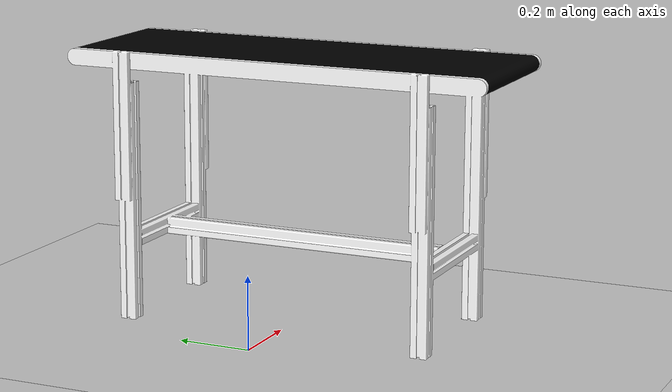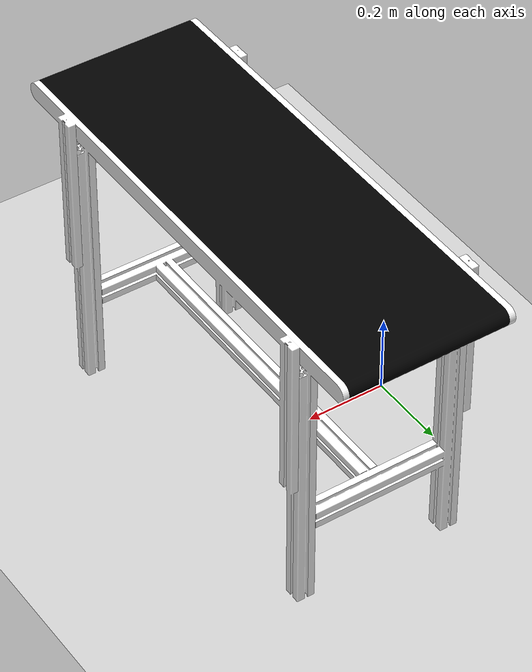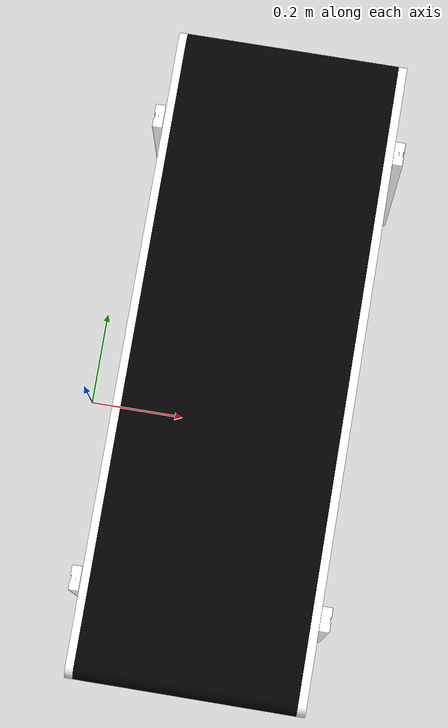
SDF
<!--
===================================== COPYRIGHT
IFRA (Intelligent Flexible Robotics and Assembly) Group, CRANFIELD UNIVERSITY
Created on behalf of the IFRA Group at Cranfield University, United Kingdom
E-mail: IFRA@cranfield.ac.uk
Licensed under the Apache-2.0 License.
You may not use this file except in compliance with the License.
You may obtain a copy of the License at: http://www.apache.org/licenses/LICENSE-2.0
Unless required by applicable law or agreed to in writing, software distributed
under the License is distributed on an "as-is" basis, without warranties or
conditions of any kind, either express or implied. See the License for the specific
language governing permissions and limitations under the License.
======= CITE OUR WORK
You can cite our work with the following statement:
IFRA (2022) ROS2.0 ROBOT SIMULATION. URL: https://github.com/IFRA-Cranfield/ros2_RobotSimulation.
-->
<?xml version="1.0" ?>

<sdf version="1.4">

  <world name="default">
    <include>
      <uri>model://ground_plane</uri>
    </include>

    <include>
      <uri>model://sun</uri>
    </include>

    <scene>
      <shadows>0</shadows>
    </scene>

    <!-- GAZEBO PLUGINS: -->
    <!-- The following plugins must be activated for the ros2_grasping to effectively work: -->

    <plugin name="gazebo_ros_state" filename="libgazebo_ros_state.so">
      <ros>
        <namespace>/ros2_grasp</namespace>
        <argument>model_states:=model_states</argument>
        <argument>link_states:=link_states</argument>
      </ros>
      <update_rate>1.0</update_rate>
    </plugin>

    <plugin name="gazebo_ros_properties" filename="libgazebo_ros_properties.so">
      <ros>
        <namespace>/ros2_grasp</namespace>
      </ros>
    </plugin>

    <!-- Insert Conveyor Belt -->
    <include>
      <name>conveyor_belt</name>
      <pose>0.33 0 0 0 0 0</pose>
      <uri>model://conveyor_belt</uri>
    </include>

  </world>
</sdf>

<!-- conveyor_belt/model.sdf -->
<sdf version="1.9">

  <model name="conveyor_belt">

    <static>true</static>

    <link name="link">

      <pose>0 0 0 0 0 0</pose>

      <visual name="visual">

        <pose>0 0 0 0 0 0</pose>

        <geometry>
          <mesh>
            <uri>meshes/conveyor_belt.dae</uri>
          </mesh>
        </geometry>

      </visual>

      <collision name="collision">

        <pose>0 0 0.71 0 0 0</pose>

        <geometry>
          <box>
            <size>0.50 1.20 0.055</size>
          </box>
        </geometry>

        <surface>

          <contact>
            <ode>
              <kp>100000</kp>
              <kd>10</kd>
              <min_depth>0.001</min_depth>
              <max_vel>1.0</max_vel>
            </ode>
          </contact>

          <friction>
            <ode>

              <!--
                La cinta se mueve en el eje Y local.
              -->

              <fdir1>1 0 0</fdir1>

              <mu>2.0</mu>

              <mu2>0.5</mu2>

            </ode>
          </friction>

        </surface>

      </collision>

    </link>

    <!-- TRACK CONTROLLER                                       -->

    <plugin
      filename="gz-sim-track-controller-system"
      name="gz::sim::systems::TrackController">

      <link>link</link>

      <track_orientation>0 0 1.57079632679</track_orientation>

      <min_velocity>-1.0</min_velocity>

      <max_velocity>1.0</max_velocity>

    </plugin>

  </model>

</sdf>
